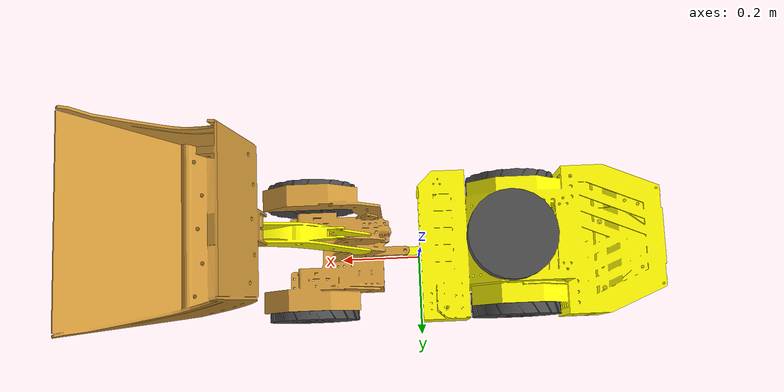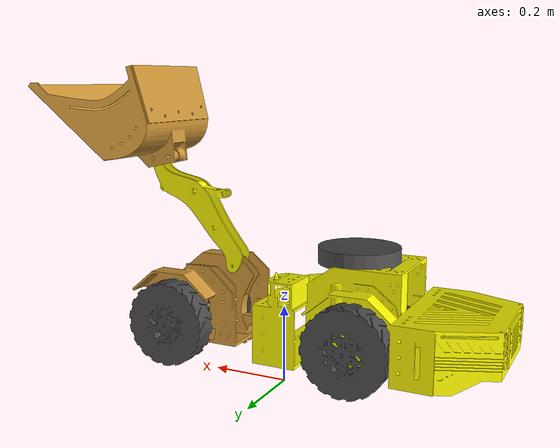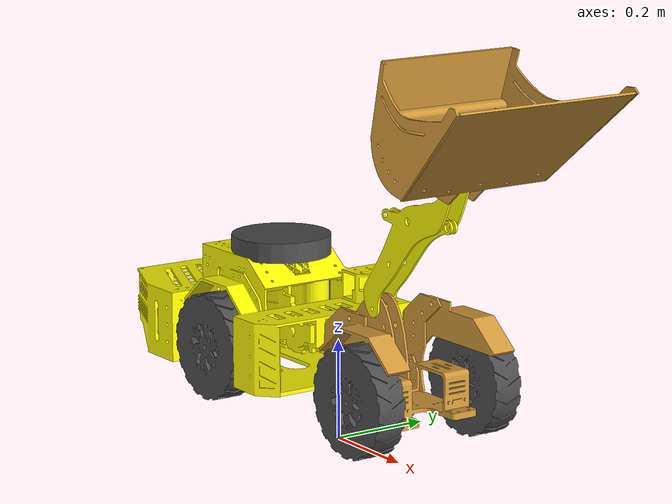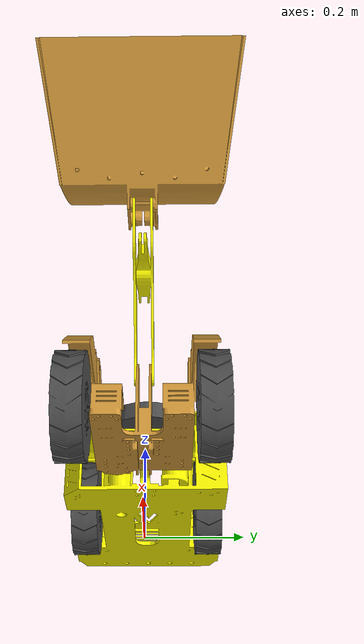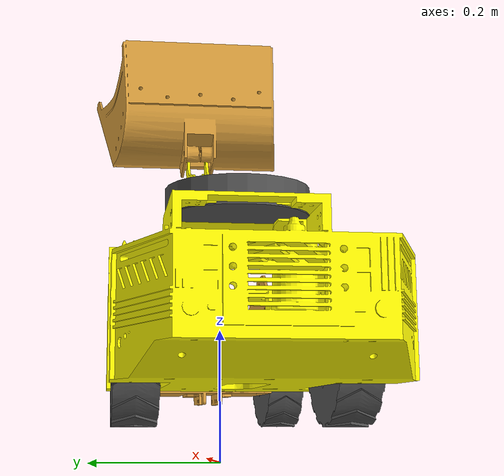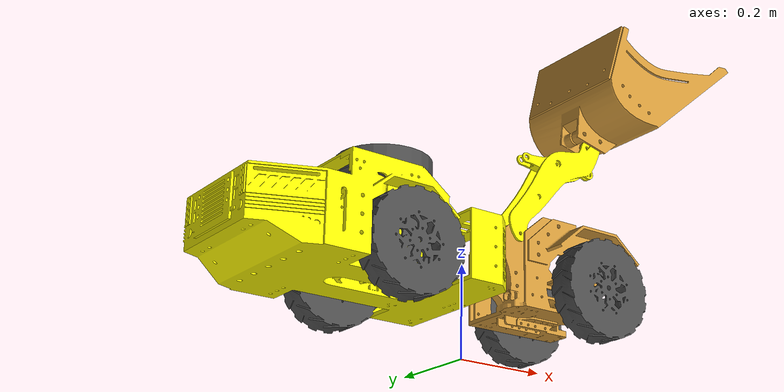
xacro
<?xml version="1.0"?>
<robot name="lhd"
    xmlns:xacro="http://ros.org/wiki/xacro">
    <xacro:arg name="is_ignition" default="true"/>
    <xacro:arg name="is_sim" default="true"/>
    <xacro:include filename="$(find lhd_description)/urdf/lhd_gazebo.xacro" />
    <xacro:include filename="$(find lhd_description)/urdf/lhd_ros2_control.xacro" />
    <link name="base_footprint"/>
    <link name="base_link">
        <inertial>
            <origin xyz="-0.29175 -0.00386 0.082893" rpy="0 0 0" />
            <mass value="5" />
            <inertia ixx="0.083795" ixy="-0.0073682" ixz="-0.011771" iyy="0.18217" iyz="-0.0010919" izz="0.21451" />
        </inertial>
        <visual>
            <origin xyz="0 0.019 0" rpy="0 0 0" />
            <geometry>
                <mesh filename="package://lhd_description/meshes/base_link.STL" />
            </geometry>
            <material name="">
                <color rgba="1 0.984 0 1" />
            </material>
        </visual>
        <collision>
            <origin xyz="0 0 0" rpy="0 0 0" />
            <geometry>
                <mesh filename="package://lhd_description/meshes/base_link.STL" />
            </geometry>
        </collision>
    </link>
    <joint name="base_joint" type="fixed">
        <parent link="base_footprint"/>
        <child link="base_link" />
        <origin xyz="0 0 0.107" rpy="0 0 0"/>
    </joint>

    <link name="laser_link">
        <inertial>
            <origin xyz="-0.011945780406062 -0.000381929217680526 -0.0170649378129477" rpy="0 0 0" />
            <mass value="0.073084435549317" />
            <inertia ixx="1.96074931730795E-05" ixy="-3.62091076640009E-07" ixz="4.28230084046735E-07" iyy="2.40983835136327E-05" iyz="1.50180909250652E-08" izz="4.14184164228595E-05" />
        </inertial>
        <visual>
            <origin xyz="0 0 0" rpy="0 0 0" />
            <geometry>
                <cylinder radius="0.1" length="0.04"/>
            </geometry>
            <material>
                <color rgba="0.3 0.3 0.3 1" />
            </material>
        </visual>
        <collision>
            <origin xyz="0 0 0" rpy="0 0 0" />
            <geometry>
                <cylinder radius="0.05" length="0.02"/>
            </geometry>
        </collision>
    </link>
    <joint name="laser_joint" type="fixed">
        <origin xyz="-0.2 0.0 0.25" rpy="0 0 3.14" />
        <parent link="base_link" />
        <child link="laser_link" />
        <axis xyz="0 0 0" />
    </joint>

    <link name="blw">
        <inertial>
            <origin xyz="0 4.19E-16 -0.029" rpy="0 0 0" />
            <mass value="0.5" />
            <inertia ixx="0.0055957" ixy="2.7838E-05" ixz="3.6804E-18" iyy="0.0054385" iyz="-1.8935E-18" izz="0.010104" />
        </inertial>
        <visual>
            <origin xyz="0 0 0" rpy="0 0 0" />
            <geometry>
                <mesh filename="package://lhd_description/meshes/blw.STL" />
            </geometry>
            <material name="">
                <color rgba="0.3 0.3 0.3 1" />
            </material>
        </visual>
        <collision>
            <origin xyz="0 0 0" rpy="0 0 0" />
            <geometry>
                <mesh filename="package://lhd_description/meshes/blw.STL" />
            </geometry>
        </collision>
    </link>

    <joint name="blw_joint" type="continuous">
        <origin xyz="-0.22532 0.16938 0.054354" rpy="1.5708 0 3.1416" />
        <parent link="base_link" />
        <child link="blw" />
        <axis xyz="0 0 1" />
        <limit effort="22" velocity="5.235988" />
        <dynamics damping="1" friction="1" />
    </joint>
    <link name="brw">
        <inertial>
            <origin xyz="-4.996E-16 -6.8905E-16 -0.029" rpy="0 0 0" />
            <mass value="0.5" />
            <inertia ixx="0.005587" ixy="-4.5504E-05" ixz="-2.9937E-18" iyy="0.0054472" iyz="1.5576E-18" izz="0.010104" />
        </inertial>
        <visual>
            <origin xyz="0 0 0" rpy="0 0 0" />
            <geometry>
                <mesh filename="package://lhd_description/meshes/brw.STL" />
            </geometry>
            <material name="">
                <color rgba="0.3 0.3 0.3 1" />
            </material>
        </visual>
        <collision>
            <origin xyz="0 0 0" rpy="0 0 0" />
            <geometry>
                <mesh filename="package://lhd_description/meshes/brw.STL" />
            </geometry>
        </collision>
    </link>
    <joint name="brw_joint" type="continuous">
        <origin xyz="-0.22532 -0.16839 0.054354" rpy="-1.5708 0 3.1416" />
        <parent link="base_link" />
        <child link="brw" />
        <axis xyz="0 0 1" />
        <limit effort="22" velocity="5.235988" />
        <dynamics damping="1" friction="1" />
    </joint>
    <link name="front">
        <inertial>
            <origin xyz="-0.29175 -0.01514 0.082893" rpy="0 0 0" />
            <mass value="5" />
            <inertia ixx="0.083795" ixy="-0.0073682" ixz="-0.011771" iyy="0.18217" iyz="-0.0010919" izz="0.21451" />
        </inertial>
        <visual>
            <origin xyz="0 0 0" rpy="0 0 0" />
            <geometry>
                <mesh filename="package://lhd_description/meshes/front.STL" />
            </geometry>
            <material name="">
                <color rgba="0.831 0.604 0.227 1" />
            </material>
        </visual>
        <collision>
            <origin xyz="0 0 0" rpy="0 0 0" />
            <geometry>
                <mesh filename="package://lhd_description/meshes/front.STL" />
            </geometry>
        </collision>
    </link>
    <joint name="front_joint" type="continuous">
        <origin xyz="0.0361611491921704 0 0.0578520635123046" rpy="0 0 0" />
        <parent link="base_link" />
        <child link="front" />
        <axis xyz="0 0 1" />
        <limit lower="-0.785" upper="0.785" effort="500" velocity="0.5" />
        <dynamics damping="1" friction="1" />
    </joint>
    <link name="arm">
        <inertial>
            <origin xyz="-0.10629 -0.16089 -0.020504" rpy="0 0 0" />
            <mass value="0.3" />
            <inertia ixx="0.0013556" ixy="-0.0010935" ixz="-1.5567E-07" iyy="0.0014081" iyz="-8.7002E-08" izz="0.0026132" />
        </inertial>
        <visual>
            <origin xyz="0 0 0" rpy="0 0 0" />
            <geometry>
                <mesh filename="package://lhd_description/meshes/arm.STL" />
            </geometry>
            <material name="">
                <color rgba="1 0.984 0 1" />
            </material>
        </visual>
        <collision>
            <origin xyz="0 0 0" rpy="0 0 0" />
            <geometry>
                <mesh filename="package://lhd_description/meshes/arm.STL" />
            </geometry>
        </collision>
    </link>
    <joint name="arm_joint" type="continuous">
        <origin xyz="0.10517 -0.0205 0.12894" rpy="-1.5708 0 3.1416" />
        <parent link="front" />
        <child link="arm" />
        <axis xyz="0 0 1" />
        <limit lower="-0.785" upper="0.785" effort="500" velocity="0.1" />
        <dynamics damping="10" friction="10" />
    </joint>
    <link name="bucket">
        <inertial>
            <origin xyz="-0.031746 -0.078005 -0.020511" rpy="0 0 0" />
            <mass value="1" />
            <inertia ixx="0.034095" ixy="-0.0020844" ixz="5.0495E-07" iyy="0.044485" iyz="-1.8436E-06" izz="0.026049" />
        </inertial>
        <visual>
            <origin xyz="0 0 0" rpy="0 0 0" />
            <geometry>
                <mesh filename="package://lhd_description/meshes/bucket.STL" />
            </geometry>
            <material name="">
                <color rgba="0.831 0.604 0.227 1" />
            </material>
        </visual>
        <collision>
            <origin xyz="0 0 0" rpy="0 0 0" />
            <geometry>
                <mesh filename="package://lhd_description/meshes/bucket.STL" />
            </geometry>
        </collision>
    </link>
    <joint name="bucket_joint" type="continuous">
        <origin xyz="-0.23304 -0.2707 0" rpy="0 0 0" />
        <parent link="arm" />
        <child link="bucket" />
        <axis xyz="0 0 1" />
        <limit lower="-0.785" upper="0.785" effort="500" velocity="0.1" />
        <dynamics damping="10" friction="10" />
    </joint>
    <link name="flw">
        <inertial>
            <origin xyz="-7.2164E-16 9.4109E-17 -0.034" rpy="0 0 0" />
            <mass value="0.5" />
            <inertia ixx="0.0056005" ixy="-1.1342E-17" ixz="7.2328E-18" iyy="0.0054337" iyz="-5.2371E-19" izz="0.010104" />
        </inertial>
        <visual>
            <origin xyz="0 0 0" rpy="0 0 0" />
            <geometry>
                <mesh filename="package://lhd_description/meshes/flw.STL" />
            </geometry>
            <material name="">
                <color rgba="0.3 0.3 0.3 1" />
            </material>
        </visual>
        <collision>
            <origin xyz="0 0 0" rpy="0 0 0" />
            <geometry>
                <mesh filename="package://lhd_description/meshes/flw.STL" />
            </geometry>
        </collision>
    </link>
    <joint name="flw_joint" type="continuous">
        <origin xyz="0.22289 0.16839 -0.0055551" rpy="1.5708 0 3.1416" />
        <parent link="front" />
        <child link="flw" />
        <axis xyz="0 0 1" />
    </joint>
    <link name="frw">
        <inertial>
            <origin xyz="-5.2736E-16 -1.2577E-16 -0.034" rpy="0 0 0" />
            <mass value="0.5" />
            <inertia ixx="0.0056005" ixy="1.1501E-17" ixz="-3.6544E-18" iyy="0.0054337" iyz="2.5813E-18" izz="0.010104" />
        </inertial>
        <visual>
            <origin xyz="0 0 0" rpy="0 0 0" />
            <geometry>
                <mesh filename="package://lhd_description/meshes/frw.STL" />
            </geometry>
            <material name="">
                <color rgba="0.3 0.3 0.3 1" />
            </material>
        </visual>
        <collision>
            <origin xyz="0 0 0" rpy="0 0 0" />
            <geometry>
                <mesh filename="package://lhd_description/meshes/frw.STL" />
            </geometry>
        </collision>
    </link>
    <joint name="frw_joint" type="continuous">
        <origin xyz="0.22289 -0.16839 -0.0055551" rpy="-1.5708 0 3.1416" />
        <parent link="front" />
        <child link="frw" />
        <axis xyz="0 0 1" />
    </joint>
</robot>

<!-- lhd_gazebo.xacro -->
<robot name="lhd"
    xmlns:xacro="http://ros.org/wiki/xacro">
    <arg name="is_ignition" default="true"/>
    <gazebo reference="base_link">
        <mu1>0.1</mu1>
        <mu2>0.1</mu2>
        <kp>1000.0</kp>
        <kd>10.0</kd>
        <minDepth>0.001</minDepth>
        <maxVel>0.5</maxVel>
    </gazebo>
    <gazebo reference="front">
        <mu1>0.1</mu1>
        <mu2>0.1</mu2>
        <kp>1000.0</kp>
        <kd>10.0</kd>
        <minDepth>0.001</minDepth>
        <maxVel>0.5</maxVel>
    </gazebo>
    <gazebo reference="arm">
        <mu1>0.1</mu1>
        <mu2>0.1</mu2>
        <kp>1000.0</kp>
        <kd>10.0</kd>
        <minDepth>0.001</minDepth>
        <maxVel>0.5</maxVel>
    </gazebo>
    <gazebo reference="bucket">
        <mu1>0.1</mu1>
        <mu2>0.1</mu2>
        <kp>1000.0</kp>
        <kd>10.0</kd>
        <minDepth>0.001</minDepth>
        <maxVel>0.5</maxVel>
    </gazebo>
    <!-- Wheels -->
    <gazebo reference="blw">
        <mu1>10000000000000.0</mu1>
        <mu2>10000000000000.0</mu2>
        <kp>1000000000000.0</kp>
        <kd>10.0</kd>
        <minDepth>0.001</minDepth>
        <maxVel>0.1</maxVel>
        <fdir1>1 0 0</fdir1>
    </gazebo>

    <gazebo reference="brw">
        <mu1>10000000000000.0</mu1>
        <mu2>10000000000000.0</mu2>
        <kp>1000000000000.0</kp>
        <kd>10.0</kd>
        <minDepth>0.001</minDepth>
        <maxVel>0.1</maxVel>
        <fdir1>1 0 0</fdir1>
    </gazebo>

    <gazebo reference="flw">
        <mu1>0.1</mu1>
        <mu2>0.1</mu2>
        <kp>1000.0</kp>
        <kd>10.0</kd>
        <minDepth>0.001</minDepth>
        <maxVel>0.5</maxVel>
    </gazebo>

    <gazebo reference="frw">
        <mu1>0.1</mu1>
        <mu2>0.1</mu2>
        <kp>1000.0</kp>
        <kd>10.0</kd>
        <minDepth>0.001</minDepth>
        <maxVel>0.5</maxVel>
    </gazebo>

    <gazebo>
        <xacro:if value="$(arg is_ignition)">
            <plugin filename="ign_ros2_control-system" name="ign_ros2_control::IgnitionROS2ControlPlugin">
                <parameters>$(find lhd_controller)/config/lhd_controllers.yaml</parameters>
            </plugin>
            <plugin filename="ignition-gazebo-sensors-system" name="ignition::gazebo::systems::Sensors">
                <render_engine>ogre2</render_engine>
            </plugin>
        </xacro:if>
        <xacro:unless value="$(arg is_ignition)">
            <plugin filename="gz_ros2_control-system" name="gz_ros2_control::GazeboSimROS2ControlPlugin">
                <parameters>$(find lhd_controller)/config/lhd_controllers.yaml</parameters>
            </plugin>
            <plugin filename="gz-sim-sensors-system" name="gz::sim::systems::Sensors">
                <render_engine>ogre2</render_engine>
            </plugin>
        </xacro:unless>
    </gazebo>

    <!-- 2D Laser Sensor -->
    <gazebo reference="laser_link">
        <sensor name="lidar" type="gpu_lidar">
            <always_on>true</always_on>
            <visualize>true</visualize>
            <topic>scan</topic>
            <update_rate>5</update_rate>
            <gz_frame_id>laser_link</gz_frame_id>
            <lidar>
                <scan>
                    <horizontal>
                        <samples>360</samples>
                        <resolution>1.00000</resolution>
                        <min_angle>0.000000</min_angle>
                        <max_angle>6.280000</max_angle>
                    </horizontal>
                </scan>
                <range>
                    <min>0.30000</min>
                    <max>12.0</max>
                    <resolution>0.02</resolution>
                </range>
                <noise>
                    <type>gaussian</type>
                    <mean>0.0</mean>
                    <stddev>0.01</stddev>
                </noise>
            </lidar>
        </sensor>
    </gazebo>

</robot>
